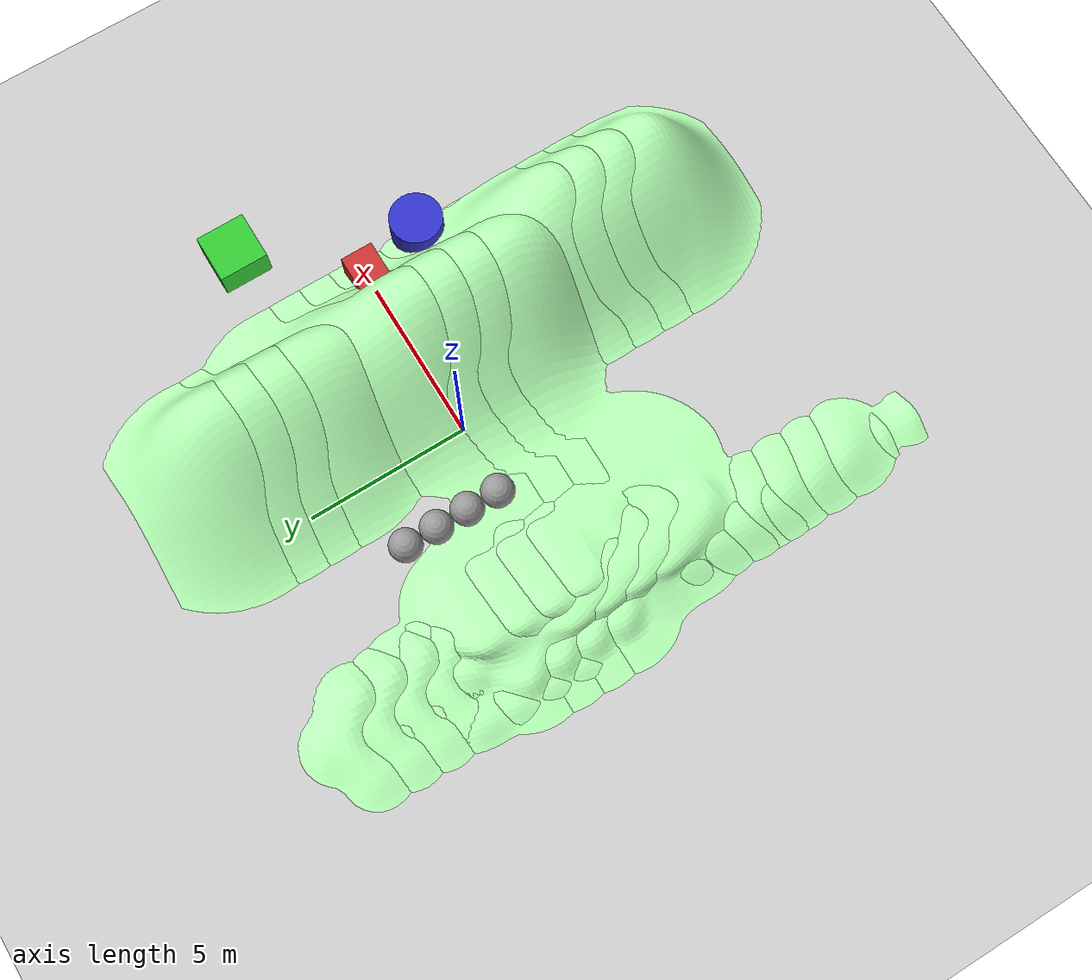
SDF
<?xml version="1.0" ?>
<sdf version="1.7">
  <world name="scene1">
    <!-- Sunlight -->
    <include>
      <uri>model://sun</uri>
    </include>

    <!-- Flat ground -->
    <include>
      <uri>model://ground_plane</uri>
    </include>

    <!-- Static Obstacles -->
    <!-- Large box obstacle 1 -->
    <model name="static_box_1">
      <static>true</static>
      <pose>5.0 0.0 0.5 0 0 0</pose>
      <link name="link">
        <collision name="collision">
          <geometry>
            <box>
              <size>2.0 1.0 1.0</size>
            </box>
          </geometry>
          <surface>
            <friction>
              <ode>
                <mu>0.5</mu>
                <mu2>0.5</mu2>
              </ode>
            </friction>
          </surface>
        </collision>
        <visual name="visual">
          <geometry>
            <box>
              <size>2.0 1.0 1.0</size>
            </box>
          </geometry>
          <material>
            <ambient>0.8 0.2 0.2 1</ambient>
            <diffuse>0.8 0.2 0.2 1</diffuse>
          </material>
        </visual>
      </link>
    </model>

    <!-- Large box obstacle 2 -->
    <model name="static_box_2">
      <static>true</static>
      <pose>8.0 3.0 0.5 0 0 0</pose>
      <link name="link">
        <collision name="collision">
          <geometry>
            <box>
              <size>1.5 1.5 1.0</size>
            </box>
          </geometry>
        </collision>
        <visual name="visual">
          <geometry>
            <box>
              <size>1.5 1.5 1.0</size>
            </box>
          </geometry>
          <material>
            <ambient>0.2 0.8 0.2 1</ambient>
            <diffuse>0.2 0.8 0.2 1</diffuse>
          </material>
        </visual>
      </link>
    </model>

    <!-- Cylinder obstacle -->
    <model name="static_cylinder_1">
      <static>true</static>
      <pose>6.0 -2.0 0.5 0 0 0</pose>
      <link name="link">
        <collision name="collision">
          <geometry>
            <cylinder>
              <radius>0.8</radius>
              <length>1.0</length>
            </cylinder>
          </geometry>
        </collision>
        <visual name="visual">
          <geometry>
            <cylinder>
              <radius>0.8</radius>
              <length>1.0</length>
            </cylinder>
          </geometry>
          <material>
            <ambient>0.2 0.2 0.8 1</ambient>
            <diffuse>0.2 0.2 0.8 1</diffuse>
          </material>
        </visual>
      </link>
    </model>

    <!-- TurtleBot3 Robots -->
    <model name="turtlebot3_0">
      <pose>0.0 0.0 0.0 0 0 0</pose>
      <include>
        <uri>file:///opt/ros/foxy/share/turtlebot3_gazebo/models/turtlebot3_burger/model.sdf</uri>
      </include>
    </model>

    <model name="turtlebot3_1">
      <pose>0.0 1.0 0.0 0 0 0</pose>
      <include>
        <uri>file:///opt/ros/foxy/share/turtlebot3_gazebo/models/turtlebot3_burger/model.sdf</uri>
      </include>
    </model>

    <model name="turtlebot3_2">
      <pose>0.0 2.0 0.0 0 0 0</pose>
      <include>
        <uri>file:///opt/ros/foxy/share/turtlebot3_gazebo/models/turtlebot3_burger/model.sdf</uri>
      </include>
    </model>

    <model name="turtlebot3_3">
      <pose>0.0 3.0 0.0 0 0 0</pose>
      <include>
        <uri>file:///opt/ros/foxy/share/turtlebot3_gazebo/models/turtlebot3_burger/model.sdf</uri>
      </include>
    </model>
  </world>
</sdf>

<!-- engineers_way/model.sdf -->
<sdf version='1.7'>
  <model name='engineers_way'>
    <link name='link_0'>
      <inertial>
        <mass>0</mass>
        <inertia>
          <ixx>0</ixx>
          <ixy>0</ixy>
          <ixz>0</ixz>
          <iyy>0</iyy>
          <iyz>0</iyz>
          <izz>0</izz>
        </inertia>
        <pose>0 0 0 0 -0 0</pose>
      </inertial>
      <pose>-2.54677 -2.42401 -0.063445 0 -0 0</pose>
      <gravity>1</gravity>
      <self_collide>0</self_collide>
      <kinematic>0</kinematic>
      <enable_wind>1</enable_wind>
      <visual name='visual'>
        <pose>0 0 0 0 -0 0</pose>
        <geometry>
          <mesh>
            <uri>/home/vignesh/RA-L/workspaces/ros1_ws/engineers_way_sml.stl</uri>
            <scale>1 1 1</scale>
          </mesh>
        </geometry>
        <material>
          <lighting>1</lighting>
          <script>
            <uri>file://media/materials/scripts/gazebo.material</uri>
            <name>Gazebo/Grey</name>
          </script>
          <shader type='pixel'>
            <normal_map>__default__</normal_map>
          </shader>
          <ambient>0.3 0.9 0.3 1</ambient>
          <diffuse>0.7 1 0.7 1</diffuse>
          <specular>0.01 1 0.01 1</specular>
          <emissive>0 1 0 1</emissive>
        </material>
        <transparency>0</transparency>
        <cast_shadows>1</cast_shadows>
      </visual>
      <collision name='collision'>
        <laser_retro>0</laser_retro>
        <max_contacts>10</max_contacts>
        <pose>0 0 0 0 -0 0</pose>
        <geometry>
          <mesh>
            <uri>/home/vignesh/RA-L/workspaces/ros1_ws/engineers_way_sml.stl</uri>
            <scale>1 1 1</scale>
          </mesh>
        </geometry>
        <surface>
          <friction>
            <ode>
              <mu>1</mu>
              <mu2>1</mu2>
              <fdir1>0 0 0</fdir1>
              <slip1>0</slip1>
              <slip2>0</slip2>
            </ode>
            <torsional>
              <coefficient>1</coefficient>
              <patch_radius>0</patch_radius>
              <surface_radius>0</surface_radius>
              <use_patch_radius>1</use_patch_radius>
              <ode>
                <slip>0</slip>
              </ode>
            </torsional>
          </friction>
          <bounce>
            <restitution_coefficient>0</restitution_coefficient>
            <threshold>1e+06</threshold>
          </bounce>
          <contact>
            <collide_without_contact>0</collide_without_contact>
            <collide_without_contact_bitmask>1</collide_without_contact_bitmask>
            <collide_bitmask>1</collide_bitmask>
            <ode>
              <soft_cfm>0</soft_cfm>
              <soft_erp>0.2</soft_erp>
              <kp>1e+13</kp>
              <kd>1</kd>
              <max_vel>0.01</max_vel>
              <min_depth>0</min_depth>
            </ode>
            <bullet>
              <split_impulse>1</split_impulse>
              <split_impulse_penetration_threshold>-0.01</split_impulse_penetration_threshold>
              <soft_cfm>0</soft_cfm>
              <soft_erp>0.2</soft_erp>
              <kp>1e+13</kp>
              <kd>1</kd>
            </bullet>
          </contact>
        </surface>
      </collision>
    </link>
    <link name='link_1'>
      <inertial>
        <mass>1</mass>
        <inertia>
          <ixx>0.1</ixx>
          <ixy>0</ixy>
          <ixz>0</ixz>
          <iyy>0.1</iyy>
          <iyz>0</iyz>
          <izz>0.1</izz>
        </inertia>
      </inertial>
      <pose>-2.12183 0.149552 0.312185 0 -0 0</pose>
      <visual name='visual'>
        <pose>0 0 0 0 -0 0</pose>
        <geometry>
          <sphere>
            <radius>0.5</radius>
          </sphere>
        </geometry>
        <material>
          <lighting>1</lighting>
          <script>
            <uri>file://media/materials/scripts/gazebo.material</uri>
            <name>Gazebo/Grey</name>
          </script>
          <shader type='pixel'/>
        </material>
        <transparency>0</transparency>
        <cast_shadows>1</cast_shadows>
      </visual>
      <collision name='collision'>
        <laser_retro>0</laser_retro>
        <max_contacts>10</max_contacts>
        <pose>0 0 0 0 -0 0</pose>
        <geometry>
          <sphere>
            <radius>0.5</radius>
          </sphere>
        </geometry>
        <surface>
          <friction>
            <ode>
              <mu>1</mu>
              <mu2>1</mu2>
              <fdir1>0 0 0</fdir1>
              <slip1>0</slip1>
              <slip2>0</slip2>
            </ode>
            <torsional>
              <coefficient>1</coefficient>
              <patch_radius>0</patch_radius>
              <surface_radius>0</surface_radius>
              <use_patch_radius>1</use_patch_radius>
              <ode>
                <slip>0</slip>
              </ode>
            </torsional>
          </friction>
          <bounce>
            <restitution_coefficient>0</restitution_coefficient>
            <threshold>1e+06</threshold>
          </bounce>
          <contact>
            <collide_without_contact>0</collide_without_contact>
            <collide_without_contact_bitmask>1</collide_without_contact_bitmask>
            <collide_bitmask>1</collide_bitmask>
            <ode>
              <soft_cfm>0</soft_cfm>
              <soft_erp>0.2</soft_erp>
              <kp>1e+13</kp>
              <kd>1</kd>
              <max_vel>0.01</max_vel>
              <min_depth>0</min_depth>
            </ode>
            <bullet>
              <split_impulse>1</split_impulse>
              <split_impulse_penetration_threshold>-0.01</split_impulse_penetration_threshold>
              <soft_cfm>0</soft_cfm>
              <soft_erp>0.2</soft_erp>
              <kp>1e+13</kp>
              <kd>1</kd>
            </bullet>
          </contact>
        </surface>
      </collision>
    </link>
    <static>0</static>
    <allow_auto_disable>1</allow_auto_disable>
  </model>
</sdf>
